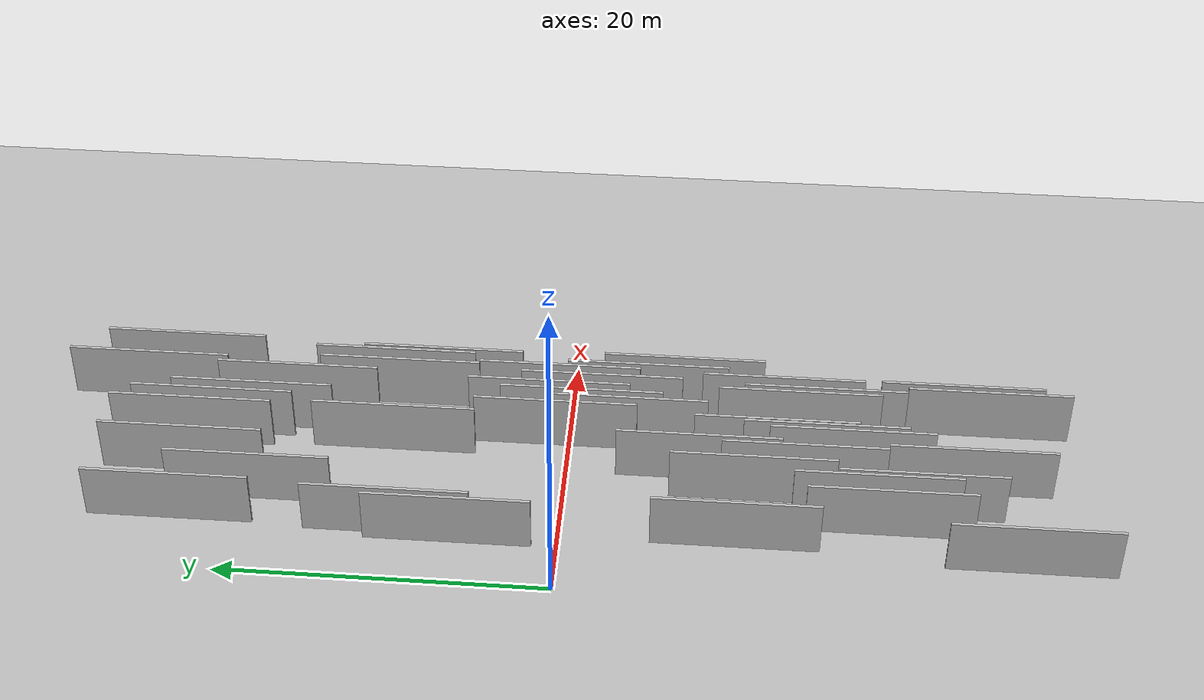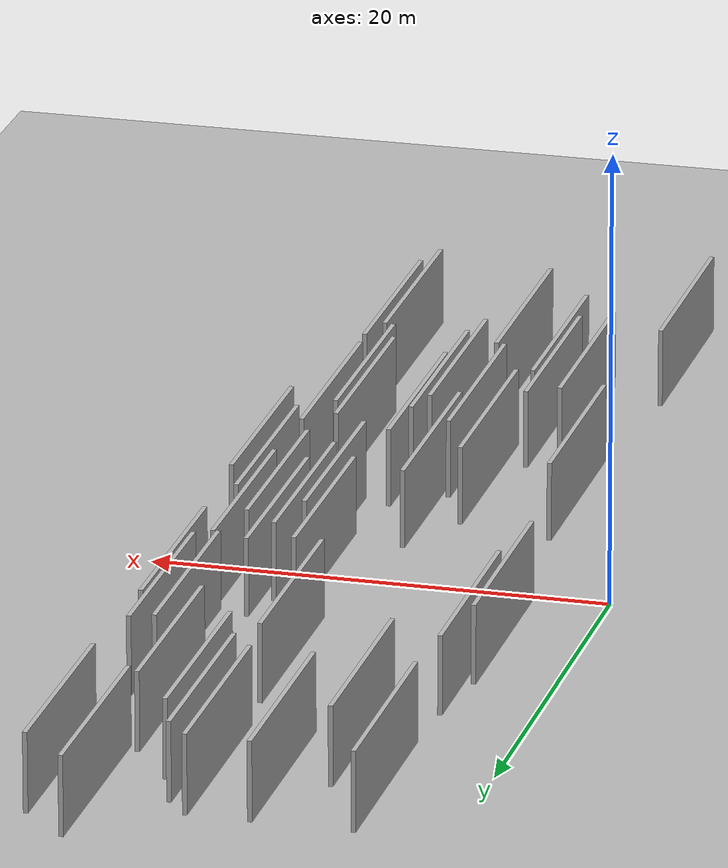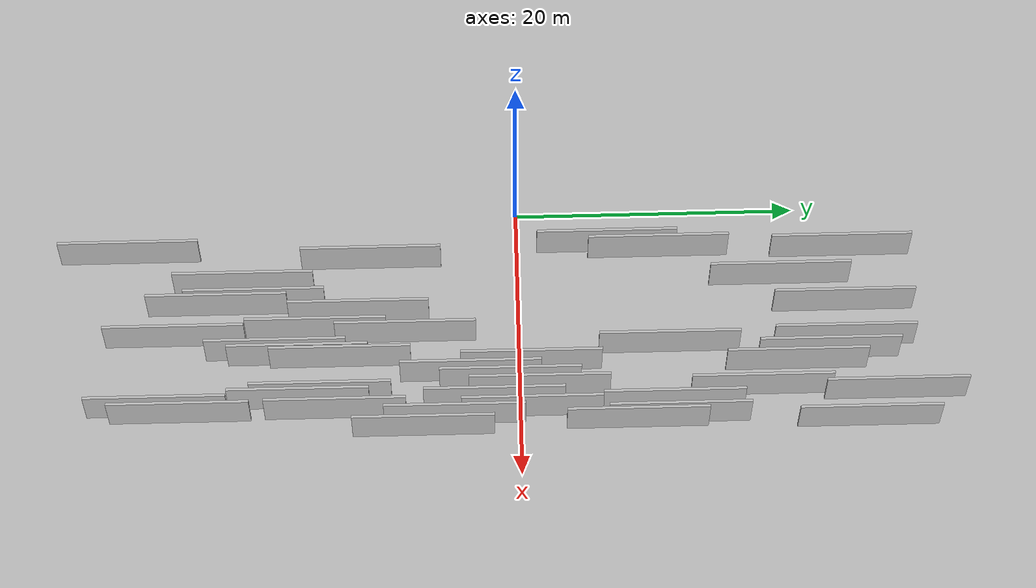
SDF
<?xml version="1.0" encoding="utf-8"?>

<sdf version="1.6">

   <world name="default">

      <gui fullscreen="0">

         <camera name="user_camera">

            <pose>-15 0 4.57585 0 0 0</pose>

            <view_controller>orbit</view_controller>

         </camera>

      </gui>

      <scene>

         <sky>

           <clouds>

             <speed>12</speed>

           </clouds>

         </sky>

         <ambient>0.4 0.4 0.4 1</ambient>

         <background>0.7 0.7 0.7 1</background>

         <shadows>1</shadows>

      </scene>

      <gravity>0 0 -9.8066</gravity>

      <magnetic_field>6e-06 2.3e-05 -4.2e-05</magnetic_field>

      <physics default="0" name="default_physics" type="ode">

         <ode>

            <solver>

               <type>quick</type>

               <iters>10</iters>

               <sor>1.0</sor>

               <use_dynamic_moi_rescaling>0</use_dynamic_moi_rescaling>

            </solver>

            <constraints>

               <cfm>0</cfm>

               <erp>0.2</erp>

               <contact_max_correcting_vel>100</contact_max_correcting_vel>

               <contact_surface_layer>0.001</contact_surface_layer>

            </constraints>

         </ode>

         <max_step_size>0.004</max_step_size>

         <real_time_factor>1</real_time_factor>

         <real_time_update_rate>250</real_time_update_rate>

      </physics>

      <light name="sun" type="directional">

         <cast_shadows>1</cast_shadows>

         <pose>0 0 10 0 0 0</pose>

         <diffuse>0.8 0.8 0.8 1</diffuse>

         <specular>0.2 0.2 0.2 1</specular>

         <attenuation>

            <range>1000</range>

            <constant>0.9</constant>

            <linear>0.01</linear>

            <quadratic>0.001</quadratic>

         </attenuation>

         <direction>-0.5 0.1 -0.9</direction>

      </light>

      <include>

         <name>ground_plane_1</name>

         <uri>model://HANNAS_ground_plane</uri>

         <pose>0 0 0  0 0 0</pose>

      </include>

      <include>

         <name>ground_plane_2</name>

         <uri>model://HANNAS_ground_plane</uri>

         <pose>100 0 0  0 0 0</pose>

      </include>

      <model name="HANNAS_wall_1">

         <static>1</static>

         <pose frame="">5.8728 18.7389 0.0 0.000000 0.000000 1.570796</pose>

         <link name="link">

            <pose frame="">0 0 2.00 0 0 0</pose>

            <collision name="collision">

               <geometry>

                  <box>

                     <size>10.00 0.2 4.00</size>

                  </box>

               </geometry>

               <max_contacts>10</max_contacts>

               <surface>

                  <contact>

                     <ode/>

                  </contact>

                  <bounce/>

                  <friction>

                     <torsional>

                        <ode/>

                     </torsional>

                     <ode/>

                  </friction>

               </surface>

            </collision>

            <visual name="visual">

               <cast_shadows>0</cast_shadows>

               <geometry>

                  <box>

                     <size>10.00 0.2 4.00</size>

                  </box>

               </geometry>

               <material>

                  <script>

                     <uri>model://HANNAS_wall/materials/scripts</uri>

                     <uri>model://HANNAS_wall/materials/textures</uri>

                     <name>vrc/HANNAS_wall</name>

                  </script>

               </material>

            </visual>

            <self_collide>0</self_collide>

            <enable_wind>0</enable_wind>

            <kinematic>0</kinematic>

         </link>

      </model>

      <model name="HANNAS_wall_2">

         <static>1</static>

         <pose frame="">15.1165 -25.6748 0.0 0.000000 0.000000 1.570796</pose>

         <link name="link">

            <pose frame="">0 0 2.00 0 0 0</pose>

            <collision name="collision">

               <geometry>

                  <box>

                     <size>10.00 0.2 4.00</size>

                  </box>

               </geometry>

               <max_contacts>10</max_contacts>

               <surface>

                  <contact>

                     <ode/>

                  </contact>

                  <bounce/>

                  <friction>

                     <torsional>

                        <ode/>

                     </torsional>

                     <ode/>

                  </friction>

               </surface>

            </collision>

            <visual name="visual">

               <cast_shadows>0</cast_shadows>

               <geometry>

                  <box>

                     <size>10.00 0.2 4.00</size>

                  </box>

               </geometry>

               <material>

                  <script>

                     <uri>model://HANNAS_wall/materials/scripts</uri>

                     <uri>model://HANNAS_wall/materials/textures</uri>

                     <name>vrc/HANNAS_wall</name>

                  </script>

               </material>

            </visual>

            <self_collide>0</self_collide>

            <enable_wind>0</enable_wind>

            <kinematic>0</kinematic>

         </link>

      </model>

      <model name="HANNAS_wall_3">

         <static>1</static>

         <pose frame="">11.5987 -12.6963 0.0 0.000000 0.000000 1.570796</pose>

         <link name="link">

            <pose frame="">0 0 2.00 0 0 0</pose>

            <collision name="collision">

               <geometry>

                  <box>

                     <size>10.00 0.2 4.00</size>

                  </box>

               </geometry>

               <max_contacts>10</max_contacts>

               <surface>

                  <contact>

                     <ode/>

                  </contact>

                  <bounce/>

                  <friction>

                     <torsional>

                        <ode/>

                     </torsional>

                     <ode/>

                  </friction>

               </surface>

            </collision>

            <visual name="visual">

               <cast_shadows>0</cast_shadows>

               <geometry>

                  <box>

                     <size>10.00 0.2 4.00</size>

                  </box>

               </geometry>

               <material>

                  <script>

                     <uri>model://HANNAS_wall/materials/scripts</uri>

                     <uri>model://HANNAS_wall/materials/textures</uri>

                     <name>vrc/HANNAS_wall</name>

                  </script>

               </material>

            </visual>

            <self_collide>0</self_collide>

            <enable_wind>0</enable_wind>

            <kinematic>0</kinematic>

         </link>

      </model>

      <model name="HANNAS_wall_4">

         <static>1</static>

         <pose frame="">13.4539 -0.6792 0.0 0.000000 0.000000 1.570796</pose>

         <link name="link">

            <pose frame="">0 0 2.00 0 0 0</pose>

            <collision name="collision">

               <geometry>

                  <box>

                     <size>10.00 0.2 4.00</size>

                  </box>

               </geometry>

               <max_contacts>10</max_contacts>

               <surface>

                  <contact>

                     <ode/>

                  </contact>

                  <bounce/>

                  <friction>

                     <torsional>

                        <ode/>

                     </torsional>

                     <ode/>

                  </friction>

               </surface>

            </collision>

            <visual name="visual">

               <cast_shadows>0</cast_shadows>

               <geometry>

                  <box>

                     <size>10.00 0.2 4.00</size>

                  </box>

               </geometry>

               <material>

                  <script>

                     <uri>model://HANNAS_wall/materials/scripts</uri>

                     <uri>model://HANNAS_wall/materials/textures</uri>

                     <name>vrc/HANNAS_wall</name>

                  </script>

               </material>

            </visual>

            <self_collide>0</self_collide>

            <enable_wind>0</enable_wind>

            <kinematic>0</kinematic>

         </link>

      </model>

      <model name="HANNAS_wall_5">

         <static>1</static>

         <pose frame="">14.0933 1.3699 0.0 0.000000 0.000000 1.570796</pose>

         <link name="link">

            <pose frame="">0 0 2.00 0 0 0</pose>

            <collision name="collision">

               <geometry>

                  <box>

                     <size>10.00 0.2 4.00</size>

                  </box>

               </geometry>

               <max_contacts>10</max_contacts>

               <surface>

                  <contact>

                     <ode/>

                  </contact>

                  <bounce/>

                  <friction>

                     <torsional>

                        <ode/>

                     </torsional>

                     <ode/>

                  </friction>

               </surface>

            </collision>

            <visual name="visual">

               <cast_shadows>0</cast_shadows>

               <geometry>

                  <box>

                     <size>10.00 0.2 4.00</size>

                  </box>

               </geometry>

               <material>

                  <script>

                     <uri>model://HANNAS_wall/materials/scripts</uri>

                     <uri>model://HANNAS_wall/materials/textures</uri>

                     <name>vrc/HANNAS_wall</name>

                  </script>

               </material>

            </visual>

            <self_collide>0</self_collide>

            <enable_wind>0</enable_wind>

            <kinematic>0</kinematic>

         </link>

      </model>

      <model name="HANNAS_wall_6">

         <static>1</static>

         <pose frame="">11.3652 -15.6783 0.0 0.000000 0.000000 1.570796</pose>

         <link name="link">

            <pose frame="">0 0 2.00 0 0 0</pose>

            <collision name="collision">

               <geometry>

                  <box>

                     <size>10.00 0.2 4.00</size>

                  </box>

               </geometry>

               <max_contacts>10</max_contacts>

               <surface>

                  <contact>

                     <ode/>

                  </contact>

                  <bounce/>

                  <friction>

                     <torsional>

                        <ode/>

                     </torsional>

                     <ode/>

                  </friction>

               </surface>

            </collision>

            <visual name="visual">

               <cast_shadows>0</cast_shadows>

               <geometry>

                  <box>

                     <size>10.00 0.2 4.00</size>

                  </box>

               </geometry>

               <material>

                  <script>

                     <uri>model://HANNAS_wall/materials/scripts</uri>

                     <uri>model://HANNAS_wall/materials/textures</uri>

                     <name>vrc/HANNAS_wall</name>

                  </script>

               </material>

            </visual>

            <self_collide>0</self_collide>

            <enable_wind>0</enable_wind>

            <kinematic>0</kinematic>

         </link>

      </model>

      <model name="HANNAS_wall_7">

         <static>1</static>

         <pose frame="">8.0963 -11.3544 0.0 0.000000 0.000000 1.570796</pose>

         <link name="link">

            <pose frame="">0 0 2.00 0 0 0</pose>

            <collision name="collision">

               <geometry>

                  <box>

                     <size>10.00 0.2 4.00</size>

                  </box>

               </geometry>

               <max_contacts>10</max_contacts>

               <surface>

                  <contact>

                     <ode/>

                  </contact>

                  <bounce/>

                  <friction>

                     <torsional>

                        <ode/>

                     </torsional>

                     <ode/>

                  </friction>

               </surface>

            </collision>

            <visual name="visual">

               <cast_shadows>0</cast_shadows>

               <geometry>

                  <box>

                     <size>10.00 0.2 4.00</size>

                  </box>

               </geometry>

               <material>

                  <script>

                     <uri>model://HANNAS_wall/materials/scripts</uri>

                     <uri>model://HANNAS_wall/materials/textures</uri>

                     <name>vrc/HANNAS_wall</name>

                  </script>

               </material>

            </visual>

            <self_collide>0</self_collide>

            <enable_wind>0</enable_wind>

            <kinematic>0</kinematic>

         </link>

      </model>

      <model name="HANNAS_wall_8">

         <static>1</static>

         <pose frame="">14.9226 26.5266 0.0 0.000000 0.000000 1.570796</pose>

         <link name="link">

            <pose frame="">0 0 2.00 0 0 0</pose>

            <collision name="collision">

               <geometry>

                  <box>

                     <size>10.00 0.2 4.00</size>

                  </box>

               </geometry>

               <max_contacts>10</max_contacts>

               <surface>

                  <contact>

                     <ode/>

                  </contact>

                  <bounce/>

                  <friction>

                     <torsional>

                        <ode/>

                     </torsional>

                     <ode/>

                  </friction>

               </surface>

            </collision>

            <visual name="visual">

               <cast_shadows>0</cast_shadows>

               <geometry>

                  <box>

                     <size>10.00 0.2 4.00</size>

                  </box>

               </geometry>

               <material>

                  <script>

                     <uri>model://HANNAS_wall/materials/scripts</uri>

                     <uri>model://HANNAS_wall/materials/textures</uri>

                     <name>vrc/HANNAS_wall</name>

                  </script>

               </material>

            </visual>

            <self_collide>0</self_collide>

            <enable_wind>0</enable_wind>

            <kinematic>0</kinematic>

         </link>

      </model>

      <model name="HANNAS_wall_9">

         <static>1</static>

         <pose frame="">11.7307 21.9676 0.0 0.000000 0.000000 1.570796</pose>

         <link name="link">

            <pose frame="">0 0 2.00 0 0 0</pose>

            <collision name="collision">

               <geometry>

                  <box>

                     <size>10.00 0.2 4.00</size>

                  </box>

               </geometry>

               <max_contacts>10</max_contacts>

               <surface>

                  <contact>

                     <ode/>

                  </contact>

                  <bounce/>

                  <friction>

                     <torsional>

                        <ode/>

                     </torsional>

                     <ode/>

                  </friction>

               </surface>

            </collision>

            <visual name="visual">

               <cast_shadows>0</cast_shadows>

               <geometry>

                  <box>

                     <size>10.00 0.2 4.00</size>

                  </box>

               </geometry>

               <material>

                  <script>

                     <uri>model://HANNAS_wall/materials/scripts</uri>

                     <uri>model://HANNAS_wall/materials/textures</uri>

                     <name>vrc/HANNAS_wall</name>

                  </script>

               </material>

            </visual>

            <self_collide>0</self_collide>

            <enable_wind>0</enable_wind>

            <kinematic>0</kinematic>

         </link>

      </model>

      <model name="HANNAS_wall_10">

         <static>1</static>

         <pose frame="">16.7326 8.2308 0.0 0.000000 0.000000 1.570796</pose>

         <link name="link">

            <pose frame="">0 0 2.00 0 0 0</pose>

            <collision name="collision">

               <geometry>

                  <box>

                     <size>10.00 0.2 4.00</size>

                  </box>

               </geometry>

               <max_contacts>10</max_contacts>

               <surface>

                  <contact>

                     <ode/>

                  </contact>

                  <bounce/>

                  <friction>

                     <torsional>

                        <ode/>

                     </torsional>

                     <ode/>

                  </friction>

               </surface>

            </collision>

            <visual name="visual">

               <cast_shadows>0</cast_shadows>

               <geometry>

                  <box>

                     <size>10.00 0.2 4.00</size>

                  </box>

               </geometry>

               <material>

                  <script>

                     <uri>model://HANNAS_wall/materials/scripts</uri>

                     <uri>model://HANNAS_wall/materials/textures</uri>

                     <name>vrc/HANNAS_wall</name>

                  </script>

               </material>

            </visual>

            <self_collide>0</self_collide>

            <enable_wind>0</enable_wind>

            <kinematic>0</kinematic>

         </link>

      </model>

      <model name="HANNAS_wall_11">

         <static>1</static>

         <pose frame="">9.7531 -24.4220 0.0 0.000000 0.000000 1.570796</pose>

         <link name="link">

            <pose frame="">0 0 2.00 0 0 0</pose>

            <collision name="collision">

               <geometry>

                  <box>

                     <size>10.00 0.2 4.00</size>

                  </box>

               </geometry>

               <max_contacts>10</max_contacts>

               <surface>

                  <contact>

                     <ode/>

                  </contact>

                  <bounce/>

                  <friction>

                     <torsional>

                        <ode/>

                     </torsional>

                     <ode/>

                  </friction>

               </surface>

            </collision>

            <visual name="visual">

               <cast_shadows>0</cast_shadows>

               <geometry>

                  <box>

                     <size>10.00 0.2 4.00</size>

                  </box>

               </geometry>

               <material>

                  <script>

                     <uri>model://HANNAS_wall/materials/scripts</uri>

                     <uri>model://HANNAS_wall/materials/textures</uri>

                     <name>vrc/HANNAS_wall</name>

                  </script>

               </material>

            </visual>

            <self_collide>0</self_collide>

            <enable_wind>0</enable_wind>

            <kinematic>0</kinematic>

         </link>

      </model>

      <model name="HANNAS_wall_12">

         <static>1</static>

         <pose frame="">9.7805 -8.0436 0.0 0.000000 0.000000 1.570796</pose>

         <link name="link">

            <pose frame="">0 0 2.00 0 0 0</pose>

            <collision name="collision">

               <geometry>

                  <box>

                     <size>10.00 0.2 4.00</size>

                  </box>

               </geometry>

               <max_contacts>10</max_contacts>

               <surface>

                  <contact>

                     <ode/>

                  </contact>

                  <bounce/>

                  <friction>

                     <torsional>

                        <ode/>

                     </torsional>

                     <ode/>

                  </friction>

               </surface>

            </collision>

            <visual name="visual">

               <cast_shadows>0</cast_shadows>

               <geometry>

                  <box>

                     <size>10.00 0.2 4.00</size>

                  </box>

               </geometry>

               <material>

                  <script>

                     <uri>model://HANNAS_wall/materials/scripts</uri>

                     <uri>model://HANNAS_wall/materials/textures</uri>

                     <name>vrc/HANNAS_wall</name>

                  </script>

               </material>

            </visual>

            <self_collide>0</self_collide>

            <enable_wind>0</enable_wind>

            <kinematic>0</kinematic>

         </link>

      </model>

      <model name="HANNAS_wall_13">

         <static>1</static>

         <pose frame="">3.7612 23.1883 0.0 0.000000 0.000000 1.570796</pose>

         <link name="link">

            <pose frame="">0 0 2.00 0 0 0</pose>

            <collision name="collision">

               <geometry>

                  <box>

                     <size>10.00 0.2 4.00</size>

                  </box>

               </geometry>

               <max_contacts>10</max_contacts>

               <surface>

                  <contact>

                     <ode/>

                  </contact>

                  <bounce/>

                  <friction>

                     <torsional>

                        <ode/>

                     </torsional>

                     <ode/>

                  </friction>

               </surface>

            </collision>

            <visual name="visual">

               <cast_shadows>0</cast_shadows>

               <geometry>

                  <box>

                     <size>10.00 0.2 4.00</size>

                  </box>

               </geometry>

               <material>

                  <script>

                     <uri>model://HANNAS_wall/materials/scripts</uri>

                     <uri>model://HANNAS_wall/materials/textures</uri>

                     <name>vrc/HANNAS_wall</name>

                  </script>

               </material>

            </visual>

            <self_collide>0</self_collide>

            <enable_wind>0</enable_wind>

            <kinematic>0</kinematic>

         </link>

      </model>

      <model name="HANNAS_wall_14">

         <static>1</static>

         <pose frame="">12.8696 -3.4673 0.0 0.000000 0.000000 1.570796</pose>

         <link name="link">

            <pose frame="">0 0 2.00 0 0 0</pose>

            <collision name="collision">

               <geometry>

                  <box>

                     <size>10.00 0.2 4.00</size>

                  </box>

               </geometry>

               <max_contacts>10</max_contacts>

               <surface>

                  <contact>

                     <ode/>

                  </contact>

                  <bounce/>

                  <friction>

                     <torsional>

                        <ode/>

                     </torsional>

                     <ode/>

                  </friction>

               </surface>

            </collision>

            <visual name="visual">

               <cast_shadows>0</cast_shadows>

               <geometry>

                  <box>

                     <size>10.00 0.2 4.00</size>

                  </box>

               </geometry>

               <material>

                  <script>

                     <uri>model://HANNAS_wall/materials/scripts</uri>

                     <uri>model://HANNAS_wall/materials/textures</uri>

                     <name>vrc/HANNAS_wall</name>

                  </script>

               </material>

            </visual>

            <self_collide>0</self_collide>

            <enable_wind>0</enable_wind>

            <kinematic>0</kinematic>

         </link>

      </model>

      <model name="HANNAS_wall_15">

         <static>1</static>

         <pose frame="">12.1952 0.8272 0.0 0.000000 0.000000 1.570796</pose>

         <link name="link">

            <pose frame="">0 0 2.00 0 0 0</pose>

            <collision name="collision">

               <geometry>

                  <box>

                     <size>10.00 0.2 4.00</size>

                  </box>

               </geometry>

               <max_contacts>10</max_contacts>

               <surface>

                  <contact>

                     <ode/>

                  </contact>

                  <bounce/>

                  <friction>

                     <torsional>

                        <ode/>

                     </torsional>

                     <ode/>

                  </friction>

               </surface>

            </collision>

            <visual name="visual">

               <cast_shadows>0</cast_shadows>

               <geometry>

                  <box>

                     <size>10.00 0.2 4.00</size>

                  </box>

               </geometry>

               <material>

                  <script>

                     <uri>model://HANNAS_wall/materials/scripts</uri>

                     <uri>model://HANNAS_wall/materials/textures</uri>

                     <name>vrc/HANNAS_wall</name>

                  </script>

               </material>

            </visual>

            <self_collide>0</self_collide>

            <enable_wind>0</enable_wind>

            <kinematic>0</kinematic>

         </link>

      </model>

      <model name="HANNAS_wall_16">

         <static>1</static>

         <pose frame="">5.7257 -19.5412 0.0 0.000000 0.000000 1.570796</pose>

         <link name="link">

            <pose frame="">0 0 2.00 0 0 0</pose>

            <collision name="collision">

               <geometry>

                  <box>

                     <size>10.00 0.2 4.00</size>

                  </box>

               </geometry>

               <max_contacts>10</max_contacts>

               <surface>

                  <contact>

                     <ode/>

                  </contact>

                  <bounce/>

                  <friction>

                     <torsional>

                        <ode/>

                     </torsional>

                     <ode/>

                  </friction>

               </surface>

            </collision>

            <visual name="visual">

               <cast_shadows>0</cast_shadows>

               <geometry>

                  <box>

                     <size>10.00 0.2 4.00</size>

                  </box>

               </geometry>

               <material>

                  <script>

                     <uri>model://HANNAS_wall/materials/scripts</uri>

                     <uri>model://HANNAS_wall/materials/textures</uri>

                     <name>vrc/HANNAS_wall</name>

                  </script>

               </material>

            </visual>

            <self_collide>0</self_collide>

            <enable_wind>0</enable_wind>

            <kinematic>0</kinematic>

         </link>

      </model>

      <model name="HANNAS_wall_17">

         <static>1</static>

         <pose frame="">15.6199 -24.0431 0.0 0.000000 0.000000 1.570796</pose>

         <link name="link">

            <pose frame="">0 0 2.00 0 0 0</pose>

            <collision name="collision">

               <geometry>

                  <box>

                     <size>10.00 0.2 4.00</size>

                  </box>

               </geometry>

               <max_contacts>10</max_contacts>

               <surface>

                  <contact>

                     <ode/>

                  </contact>

                  <bounce/>

                  <friction>

                     <torsional>

                        <ode/>

                     </torsional>

                     <ode/>

                  </friction>

               </surface>

            </collision>

            <visual name="visual">

               <cast_shadows>0</cast_shadows>

               <geometry>

                  <box>

                     <size>10.00 0.2 4.00</size>

                  </box>

               </geometry>

               <material>

                  <script>

                     <uri>model://HANNAS_wall/materials/scripts</uri>

                     <uri>model://HANNAS_wall/materials/textures</uri>

                     <name>vrc/HANNAS_wall</name>

                  </script>

               </material>

            </visual>

            <self_collide>0</self_collide>

            <enable_wind>0</enable_wind>

            <kinematic>0</kinematic>

         </link>

      </model>

      <model name="HANNAS_wall_18">

         <static>1</static>

         <pose frame="">16.4174 11.1938 0.0 0.000000 0.000000 1.570796</pose>

         <link name="link">

            <pose frame="">0 0 2.00 0 0 0</pose>

            <collision name="collision">

               <geometry>

                  <box>

                     <size>10.00 0.2 4.00</size>

                  </box>

               </geometry>

               <max_contacts>10</max_contacts>

               <surface>

                  <contact>

                     <ode/>

                  </contact>

                  <bounce/>

                  <friction>

                     <torsional>

                        <ode/>

                     </torsional>

                     <ode/>

                  </friction>

               </surface>

            </collision>

            <visual name="visual">

               <cast_shadows>0</cast_shadows>

               <geometry>

                  <box>

                     <size>10.00 0.2 4.00</size>

                  </box>

               </geometry>

               <material>

                  <script>

                     <uri>model://HANNAS_wall/materials/scripts</uri>

                     <uri>model://HANNAS_wall/materials/textures</uri>

                     <name>vrc/HANNAS_wall</name>

                  </script>

               </material>

            </visual>

            <self_collide>0</self_collide>

            <enable_wind>0</enable_wind>

            <kinematic>0</kinematic>

         </link>

      </model>

      <model name="HANNAS_wall_19">

         <static>1</static>

         <pose frame="">3.1681 -27.7267 0.0 0.000000 0.000000 1.570796</pose>

         <link name="link">

            <pose frame="">0 0 2.00 0 0 0</pose>

            <collision name="collision">

               <geometry>

                  <box>

                     <size>10.00 0.2 4.00</size>

                  </box>

               </geometry>

               <max_contacts>10</max_contacts>

               <surface>

                  <contact>

                     <ode/>

                  </contact>

                  <bounce/>

                  <friction>

                     <torsional>

                        <ode/>

                     </torsional>

                     <ode/>

                  </friction>

               </surface>

            </collision>

            <visual name="visual">

               <cast_shadows>0</cast_shadows>

               <geometry>

                  <box>

                     <size>10.00 0.2 4.00</size>

                  </box>

               </geometry>

               <material>

                  <script>

                     <uri>model://HANNAS_wall/materials/scripts</uri>

                     <uri>model://HANNAS_wall/materials/textures</uri>

                     <name>vrc/HANNAS_wall</name>

                  </script>

               </material>

            </visual>

            <self_collide>0</self_collide>

            <enable_wind>0</enable_wind>

            <kinematic>0</kinematic>

         </link>

      </model>

      <model name="HANNAS_wall_20">

         <static>1</static>

         <pose frame="">14.9461 -1.8319 0.0 0.000000 0.000000 1.570796</pose>

         <link name="link">

            <pose frame="">0 0 2.00 0 0 0</pose>

            <collision name="collision">

               <geometry>

                  <box>

                     <size>10.00 0.2 4.00</size>

                  </box>

               </geometry>

               <max_contacts>10</max_contacts>

               <surface>

                  <contact>

                     <ode/>

                  </contact>

                  <bounce/>

                  <friction>

                     <torsional>

                        <ode/>

                     </torsional>

                     <ode/>

                  </friction>

               </surface>

            </collision>

            <visual name="visual">

               <cast_shadows>0</cast_shadows>

               <geometry>

                  <box>

                     <size>10.00 0.2 4.00</size>

                  </box>

               </geometry>

               <material>

                  <script>

                     <uri>model://HANNAS_wall/materials/scripts</uri>

                     <uri>model://HANNAS_wall/materials/textures</uri>

                     <name>vrc/HANNAS_wall</name>

                  </script>

               </material>

            </visual>

            <self_collide>0</self_collide>

            <enable_wind>0</enable_wind>

            <kinematic>0</kinematic>

         </link>

      </model>

      <model name="HANNAS_wall_21">

         <static>1</static>

         <pose frame="">14.7141 -15.6450 0.0 0.000000 0.000000 1.570796</pose>

         <link name="link">

            <pose frame="">0 0 2.00 0 0 0</pose>

            <collision name="collision">

               <geometry>

                  <box>

                     <size>10.00 0.2 4.00</size>

                  </box>

               </geometry>

               <max_contacts>10</max_contacts>

               <surface>

                  <contact>

                     <ode/>

                  </contact>

                  <bounce/>

                  <friction>

                     <torsional>

                        <ode/>

                     </torsional>

                     <ode/>

                  </friction>

               </surface>

            </collision>

            <visual name="visual">

               <cast_shadows>0</cast_shadows>

               <geometry>

                  <box>

                     <size>10.00 0.2 4.00</size>

                  </box>

               </geometry>

               <material>

                  <script>

                     <uri>model://HANNAS_wall/materials/scripts</uri>

                     <uri>model://HANNAS_wall/materials/textures</uri>

                     <name>vrc/HANNAS_wall</name>

                  </script>

               </material>

            </visual>

            <self_collide>0</self_collide>

            <enable_wind>0</enable_wind>

            <kinematic>0</kinematic>

         </link>

      </model>

      <model name="HANNAS_wall_22">

         <static>1</static>

         <pose frame="">14.2834 -14.0796 0.0 0.000000 0.000000 1.570796</pose>

         <link name="link">

            <pose frame="">0 0 2.00 0 0 0</pose>

            <collision name="collision">

               <geometry>

                  <box>

                     <size>10.00 0.2 4.00</size>

                  </box>

               </geometry>

               <max_contacts>10</max_contacts>

               <surface>

                  <contact>

                     <ode/>

                  </contact>

                  <bounce/>

                  <friction>

                     <torsional>

                        <ode/>

                     </torsional>

                     <ode/>

                  </friction>

               </surface>

            </collision>

            <visual name="visual">

               <cast_shadows>0</cast_shadows>

               <geometry>

                  <box>

                     <size>10.00 0.2 4.00</size>

                  </box>

               </geometry>

               <material>

                  <script>

                     <uri>model://HANNAS_wall/materials/scripts</uri>

                     <uri>model://HANNAS_wall/materials/textures</uri>

                     <name>vrc/HANNAS_wall</name>

                  </script>

               </material>

            </visual>

            <self_collide>0</self_collide>

            <enable_wind>0</enable_wind>

            <kinematic>0</kinematic>

         </link>

      </model>

      <model name="HANNAS_wall_23">

         <static>1</static>

         <pose frame="">16.9758 24.5223 0.0 0.000000 0.000000 1.570796</pose>

         <link name="link">

            <pose frame="">0 0 2.00 0 0 0</pose>

            <collision name="collision">

               <geometry>

                  <box>

                     <size>10.00 0.2 4.00</size>

                  </box>

               </geometry>

               <max_contacts>10</max_contacts>

               <surface>

                  <contact>

                     <ode/>

                  </contact>

                  <bounce/>

                  <friction>

                     <torsional>

                        <ode/>

                     </torsional>

                     <ode/>

                  </friction>

               </surface>

            </collision>

            <visual name="visual">

               <cast_shadows>0</cast_shadows>

               <geometry>

                  <box>

                     <size>10.00 0.2 4.00</size>

                  </box>

               </geometry>

               <material>

                  <script>

                     <uri>model://HANNAS_wall/materials/scripts</uri>

                     <uri>model://HANNAS_wall/materials/textures</uri>

                     <name>vrc/HANNAS_wall</name>

                  </script>

               </material>

            </visual>

            <self_collide>0</self_collide>

            <enable_wind>0</enable_wind>

            <kinematic>0</kinematic>

         </link>

      </model>

      <model name="HANNAS_wall_24">

         <static>1</static>

         <pose frame="">10.7554 23.1111 0.0 0.000000 0.000000 1.570796</pose>

         <link name="link">

            <pose frame="">0 0 2.00 0 0 0</pose>

            <collision name="collision">

               <geometry>

                  <box>

                     <size>10.00 0.2 4.00</size>

                  </box>

               </geometry>

               <max_contacts>10</max_contacts>

               <surface>

                  <contact>

                     <ode/>

                  </contact>

                  <bounce/>

                  <friction>

                     <torsional>

                        <ode/>

                     </torsional>

                     <ode/>

                  </friction>

               </surface>

            </collision>

            <visual name="visual">

               <cast_shadows>0</cast_shadows>

               <geometry>

                  <box>

                     <size>10.00 0.2 4.00</size>

                  </box>

               </geometry>

               <material>

                  <script>

                     <uri>model://HANNAS_wall/materials/scripts</uri>

                     <uri>model://HANNAS_wall/materials/textures</uri>

                     <name>vrc/HANNAS_wall</name>

                  </script>

               </material>

            </visual>

            <self_collide>0</self_collide>

            <enable_wind>0</enable_wind>

            <kinematic>0</kinematic>

         </link>

      </model>

      <model name="HANNAS_wall_25">

         <static>1</static>

         <pose frame="">10.9411 -17.2613 0.0 0.000000 0.000000 1.570796</pose>

         <link name="link">

            <pose frame="">0 0 2.00 0 0 0</pose>

            <collision name="collision">

               <geometry>

                  <box>

                     <size>10.00 0.2 4.00</size>

                  </box>

               </geometry>

               <max_contacts>10</max_contacts>

               <surface>

                  <contact>

                     <ode/>

                  </contact>

                  <bounce/>

                  <friction>

                     <torsional>

                        <ode/>

                     </torsional>

                     <ode/>

                  </friction>

               </surface>

            </collision>

            <visual name="visual">

               <cast_shadows>0</cast_shadows>

               <geometry>

                  <box>

                     <size>10.00 0.2 4.00</size>

                  </box>

               </geometry>

               <material>

                  <script>

                     <uri>model://HANNAS_wall/materials/scripts</uri>

                     <uri>model://HANNAS_wall/materials/textures</uri>

                     <name>vrc/HANNAS_wall</name>

                  </script>

               </material>

            </visual>

            <self_collide>0</self_collide>

            <enable_wind>0</enable_wind>

            <kinematic>0</kinematic>

         </link>

      </model>

      <model name="HANNAS_wall_26">

         <static>1</static>

         <pose frame="">15.6875 0.8320 0.0 0.000000 0.000000 1.570796</pose>

         <link name="link">

            <pose frame="">0 0 2.00 0 0 0</pose>

            <collision name="collision">

               <geometry>

                  <box>

                     <size>10.00 0.2 4.00</size>

                  </box>

               </geometry>

               <max_contacts>10</max_contacts>

               <surface>

                  <contact>

                     <ode/>

                  </contact>

                  <bounce/>

                  <friction>

                     <torsional>

                        <ode/>

                     </torsional>

                     <ode/>

                  </friction>

               </surface>

            </collision>

            <visual name="visual">

               <cast_shadows>0</cast_shadows>

               <geometry>

                  <box>

                     <size>10.00 0.2 4.00</size>

                  </box>

               </geometry>

               <material>

                  <script>

                     <uri>model://HANNAS_wall/materials/scripts</uri>

                     <uri>model://HANNAS_wall/materials/textures</uri>

                     <name>vrc/HANNAS_wall</name>

                  </script>

               </material>

            </visual>

            <self_collide>0</self_collide>

            <enable_wind>0</enable_wind>

            <kinematic>0</kinematic>

         </link>

      </model>

      <model name="HANNAS_wall_27">

         <static>1</static>

         <pose frame="">16.9857 -6.8696 0.0 0.000000 0.000000 1.570796</pose>

         <link name="link">

            <pose frame="">0 0 2.00 0 0 0</pose>

            <collision name="collision">

               <geometry>

                  <box>

                     <size>10.00 0.2 4.00</size>

                  </box>

               </geometry>

               <max_contacts>10</max_contacts>

               <surface>

                  <contact>

                     <ode/>

                  </contact>

                  <bounce/>

                  <friction>

                     <torsional>

                        <ode/>

                     </torsional>

                     <ode/>

                  </friction>

               </surface>

            </collision>

            <visual name="visual">

               <cast_shadows>0</cast_shadows>

               <geometry>

                  <box>

                     <size>10.00 0.2 4.00</size>

                  </box>

               </geometry>

               <material>

                  <script>

                     <uri>model://HANNAS_wall/materials/scripts</uri>

                     <uri>model://HANNAS_wall/materials/textures</uri>

                     <name>vrc/HANNAS_wall</name>

                  </script>

               </material>

            </visual>

            <self_collide>0</self_collide>

            <enable_wind>0</enable_wind>

            <kinematic>0</kinematic>

         </link>

      </model>

      <model name="HANNAS_wall_28">

         <static>1</static>

         <pose frame="">7.3881 -21.4155 0.0 0.000000 0.000000 1.570796</pose>

         <link name="link">

            <pose frame="">0 0 2.00 0 0 0</pose>

            <collision name="collision">

               <geometry>

                  <box>

                     <size>10.00 0.2 4.00</size>

                  </box>

               </geometry>

               <max_contacts>10</max_contacts>

               <surface>

                  <contact>

                     <ode/>

                  </contact>

                  <bounce/>

                  <friction>

                     <torsional>

                        <ode/>

                     </torsional>

                     <ode/>

                  </friction>

               </surface>

            </collision>

            <visual name="visual">

               <cast_shadows>0</cast_shadows>

               <geometry>

                  <box>

                     <size>10.00 0.2 4.00</size>

                  </box>

               </geometry>

               <material>

                  <script>

                     <uri>model://HANNAS_wall/materials/scripts</uri>

                     <uri>model://HANNAS_wall/materials/textures</uri>

                     <name>vrc/HANNAS_wall</name>

                  </script>

               </material>

            </visual>

            <self_collide>0</self_collide>

            <enable_wind>0</enable_wind>

            <kinematic>0</kinematic>

         </link>

      </model>

      <model name="HANNAS_wall_29">

         <static>1</static>

         <pose frame="">15.4405 10.8149 0.0 0.000000 0.000000 1.570796</pose>

         <link name="link">

            <pose frame="">0 0 2.00 0 0 0</pose>

            <collision name="collision">

               <geometry>

                  <box>

                     <size>10.00 0.2 4.00</size>

                  </box>

               </geometry>

               <max_contacts>10</max_contacts>

               <surface>

                  <contact>

                     <ode/>

                  </contact>

                  <bounce/>

                  <friction>

                     <torsional>

                        <ode/>

                     </torsional>

                     <ode/>

                  </friction>

               </surface>

            </collision>

            <visual name="visual">

               <cast_shadows>0</cast_shadows>

               <geometry>

                  <box>

                     <size>10.00 0.2 4.00</size>

                  </box>

               </geometry>

               <material>

                  <script>

                     <uri>model://HANNAS_wall/materials/scripts</uri>

                     <uri>model://HANNAS_wall/materials/textures</uri>

                     <name>vrc/HANNAS_wall</name>

                  </script>

               </material>

            </visual>

            <self_collide>0</self_collide>

            <enable_wind>0</enable_wind>

            <kinematic>0</kinematic>

         </link>

      </model>

      <model name="HANNAS_wall_30">

         <static>1</static>

         <pose frame="">16.1586 -4.6386 0.0 0.000000 0.000000 1.570796</pose>

         <link name="link">

            <pose frame="">0 0 2.00 0 0 0</pose>

            <collision name="collision">

               <geometry>

                  <box>

                     <size>10.00 0.2 4.00</size>

                  </box>

               </geometry>

               <max_contacts>10</max_contacts>

               <surface>

                  <contact>

                     <ode/>

                  </contact>

                  <bounce/>

                  <friction>

                     <torsional>

                        <ode/>

                     </torsional>

                     <ode/>

                  </friction>

               </surface>

            </collision>

            <visual name="visual">

               <cast_shadows>0</cast_shadows>

               <geometry>

                  <box>

                     <size>10.00 0.2 4.00</size>

                  </box>

               </geometry>

               <material>

                  <script>

                     <uri>model://HANNAS_wall/materials/scripts</uri>

                     <uri>model://HANNAS_wall/materials/textures</uri>

                     <name>vrc/HANNAS_wall</name>

                  </script>

               </material>

            </visual>

            <self_collide>0</self_collide>

            <enable_wind>0</enable_wind>

            <kinematic>0</kinematic>

         </link>

      </model>

      <model name="HANNAS_wall_31">

         <static>1</static>

         <pose frame="">14.4208 17.0712 0.0 0.000000 0.000000 1.570796</pose>

         <link name="link">

            <pose frame="">0 0 2.00 0 0 0</pose>

            <collision name="collision">

               <geometry>

                  <box>

                     <size>10.00 0.2 4.00</size>

                  </box>

               </geometry>

               <max_contacts>10</max_contacts>

               <surface>

                  <contact>

                     <ode/>

                  </contact>

                  <bounce/>

                  <friction>

                     <torsional>

                        <ode/>

                     </torsional>

                     <ode/>

                  </friction>

               </surface>

            </collision>

            <visual name="visual">

               <cast_shadows>0</cast_shadows>

               <geometry>

                  <box>

                     <size>10.00 0.2 4.00</size>

                  </box>

               </geometry>

               <material>

                  <script>

                     <uri>model://HANNAS_wall/materials/scripts</uri>

                     <uri>model://HANNAS_wall/materials/textures</uri>

                     <name>vrc/HANNAS_wall</name>

                  </script>

               </material>

            </visual>

            <self_collide>0</self_collide>

            <enable_wind>0</enable_wind>

            <kinematic>0</kinematic>

         </link>

      </model>

      <model name="HANNAS_wall_32">

         <static>1</static>

         <pose frame="">8.0457 23.1736 0.0 0.000000 0.000000 1.570796</pose>

         <link name="link">

            <pose frame="">0 0 2.00 0 0 0</pose>

            <collision name="collision">

               <geometry>

                  <box>

                     <size>10.00 0.2 4.00</size>

                  </box>

               </geometry>

               <max_contacts>10</max_contacts>

               <surface>

                  <contact>

                     <ode/>

                  </contact>

                  <bounce/>

                  <friction>

                     <torsional>

                        <ode/>

                     </torsional>

                     <ode/>

                  </friction>

               </surface>

            </collision>

            <visual name="visual">

               <cast_shadows>0</cast_shadows>

               <geometry>

                  <box>

                     <size>10.00 0.2 4.00</size>

                  </box>

               </geometry>

               <material>

                  <script>

                     <uri>model://HANNAS_wall/materials/scripts</uri>

                     <uri>model://HANNAS_wall/materials/textures</uri>

                     <name>vrc/HANNAS_wall</name>

                  </script>

               </material>

            </visual>

            <self_collide>0</self_collide>

            <enable_wind>0</enable_wind>

            <kinematic>0</kinematic>

         </link>

      </model>

      <model name="HANNAS_wall_33">

         <static>1</static>

         <pose frame="">7.0364 -18.7599 0.0 0.000000 0.000000 1.570796</pose>

         <link name="link">

            <pose frame="">0 0 2.00 0 0 0</pose>

            <collision name="collision">

               <geometry>

                  <box>

                     <size>10.00 0.2 4.00</size>

                  </box>

               </geometry>

               <max_contacts>10</max_contacts>

               <surface>

                  <contact>

                     <ode/>

                  </contact>

                  <bounce/>

                  <friction>

                     <torsional>

                        <ode/>

                     </torsional>

                     <ode/>

                  </friction>

               </surface>

            </collision>

            <visual name="visual">

               <cast_shadows>0</cast_shadows>

               <geometry>

                  <box>

                     <size>10.00 0.2 4.00</size>

                  </box>

               </geometry>

               <material>

                  <script>

                     <uri>model://HANNAS_wall/materials/scripts</uri>

                     <uri>model://HANNAS_wall/materials/textures</uri>

                     <name>vrc/HANNAS_wall</name>

                  </script>

               </material>

            </visual>

            <self_collide>0</self_collide>

            <enable_wind>0</enable_wind>

            <kinematic>0</kinematic>

         </link>

      </model>

      <model name="HANNAS_wall_34">

         <static>1</static>

         <pose frame="">9.3821 -14.4022 0.0 0.000000 0.000000 1.570796</pose>

         <link name="link">

            <pose frame="">0 0 2.00 0 0 0</pose>

            <collision name="collision">

               <geometry>

                  <box>

                     <size>10.00 0.2 4.00</size>

                  </box>

               </geometry>

               <max_contacts>10</max_contacts>

               <surface>

                  <contact>

                     <ode/>

                  </contact>

                  <bounce/>

                  <friction>

                     <torsional>

                        <ode/>

                     </torsional>

                     <ode/>

                  </friction>

               </surface>

            </collision>

            <visual name="visual">

               <cast_shadows>0</cast_shadows>

               <geometry>

                  <box>

                     <size>10.00 0.2 4.00</size>

                  </box>

               </geometry>

               <material>

                  <script>

                     <uri>model://HANNAS_wall/materials/scripts</uri>

                     <uri>model://HANNAS_wall/materials/textures</uri>

                     <name>vrc/HANNAS_wall</name>

                  </script>

               </material>

            </visual>

            <self_collide>0</self_collide>

            <enable_wind>0</enable_wind>

            <kinematic>0</kinematic>

         </link>

      </model>

      <model name="HANNAS_wall_35">

         <static>1</static>

         <pose frame="">3.0269 6.4592 0.0 0.000000 0.000000 1.570796</pose>

         <link name="link">

            <pose frame="">0 0 2.00 0 0 0</pose>

            <collision name="collision">

               <geometry>

                  <box>

                     <size>10.00 0.2 4.00</size>

                  </box>

               </geometry>

               <max_contacts>10</max_contacts>

               <surface>

                  <contact>

                     <ode/>

                  </contact>

                  <bounce/>

                  <friction>

                     <torsional>

                        <ode/>

                     </torsional>

                     <ode/>

                  </friction>

               </surface>

            </collision>

            <visual name="visual">

               <cast_shadows>0</cast_shadows>

               <geometry>

                  <box>

                     <size>10.00 0.2 4.00</size>

                  </box>

               </geometry>

               <material>

                  <script>

                     <uri>model://HANNAS_wall/materials/scripts</uri>

                     <uri>model://HANNAS_wall/materials/textures</uri>

                     <name>vrc/HANNAS_wall</name>

                  </script>

               </material>

            </visual>

            <self_collide>0</self_collide>

            <enable_wind>0</enable_wind>

            <kinematic>0</kinematic>

         </link>

      </model>

      <model name="HANNAS_wall_36">

         <static>1</static>

         <pose frame="">12.5267 19.6364 0.0 0.000000 0.000000 1.570796</pose>

         <link name="link">

            <pose frame="">0 0 2.00 0 0 0</pose>

            <collision name="collision">

               <geometry>

                  <box>

                     <size>10.00 0.2 4.00</size>

                  </box>

               </geometry>

               <max_contacts>10</max_contacts>

               <surface>

                  <contact>

                     <ode/>

                  </contact>

                  <bounce/>

                  <friction>

                     <torsional>

                        <ode/>

                     </torsional>

                     <ode/>

                  </friction>

               </surface>

            </collision>

            <visual name="visual">

               <cast_shadows>0</cast_shadows>

               <geometry>

                  <box>

                     <size>10.00 0.2 4.00</size>

                  </box>

               </geometry>

               <material>

                  <script>

                     <uri>model://HANNAS_wall/materials/scripts</uri>

                     <uri>model://HANNAS_wall/materials/textures</uri>

                     <name>vrc/HANNAS_wall</name>

                  </script>

               </material>

            </visual>

            <self_collide>0</self_collide>

            <enable_wind>0</enable_wind>

            <kinematic>0</kinematic>

         </link>

      </model>

      <model name="HANNAS_wall_37">

         <static>1</static>

         <pose frame="">3.5224 10.1234 0.0 0.000000 0.000000 1.570796</pose>

         <link name="link">

            <pose frame="">0 0 2.00 0 0 0</pose>

            <collision name="collision">

               <geometry>

                  <box>

                     <size>10.00 0.2 4.00</size>

                  </box>

               </geometry>

               <max_contacts>10</max_contacts>

               <surface>

                  <contact>

                     <ode/>

                  </contact>

                  <bounce/>

                  <friction>

                     <torsional>

                        <ode/>

                     </torsional>

                     <ode/>

                  </friction>

               </surface>

            </collision>

            <visual name="visual">

               <cast_shadows>0</cast_shadows>

               <geometry>

                  <box>

                     <size>10.00 0.2 4.00</size>

                  </box>

               </geometry>

               <material>

                  <script>

                     <uri>model://HANNAS_wall/materials/scripts</uri>

                     <uri>model://HANNAS_wall/materials/textures</uri>

                     <name>vrc/HANNAS_wall</name>

                  </script>

               </material>

            </visual>

            <self_collide>0</self_collide>

            <enable_wind>0</enable_wind>

            <kinematic>0</kinematic>

         </link>

      </model>

      <model name="HANNAS_wall_38">

         <static>1</static>

         <pose frame="">10.9959 10.6520 0.0 0.000000 0.000000 1.570796</pose>

         <link name="link">

            <pose frame="">0 0 2.00 0 0 0</pose>

            <collision name="collision">

               <geometry>

                  <box>

                     <size>10.00 0.2 4.00</size>

                  </box>

               </geometry>

               <max_contacts>10</max_contacts>

               <surface>

                  <contact>

                     <ode/>

                  </contact>

                  <bounce/>

                  <friction>

                     <torsional>

                        <ode/>

                     </torsional>

                     <ode/>

                  </friction>

               </surface>

            </collision>

            <visual name="visual">

               <cast_shadows>0</cast_shadows>

               <geometry>

                  <box>

                     <size>10.00 0.2 4.00</size>

                  </box>

               </geometry>

               <material>

                  <script>

                     <uri>model://HANNAS_wall/materials/scripts</uri>

                     <uri>model://HANNAS_wall/materials/textures</uri>

                     <name>vrc/HANNAS_wall</name>

                  </script>

               </material>

            </visual>

            <self_collide>0</self_collide>

            <enable_wind>0</enable_wind>

            <kinematic>0</kinematic>

         </link>

      </model>

      <model name="HANNAS_wall_39">

         <static>1</static>

         <pose frame="">15.5379 -13.0557 0.0 0.000000 0.000000 1.570796</pose>

         <link name="link">

            <pose frame="">0 0 2.00 0 0 0</pose>

            <collision name="collision">

               <geometry>

                  <box>

                     <size>10.00 0.2 4.00</size>

                  </box>

               </geometry>

               <max_contacts>10</max_contacts>

               <surface>

                  <contact>

                     <ode/>

                  </contact>

                  <bounce/>

                  <friction>

                     <torsional>

                        <ode/>

                     </torsional>

                     <ode/>

                  </friction>

               </surface>

            </collision>

            <visual name="visual">

               <cast_shadows>0</cast_shadows>

               <geometry>

                  <box>

                     <size>10.00 0.2 4.00</size>

                  </box>

               </geometry>

               <material>

                  <script>

                     <uri>model://HANNAS_wall/materials/scripts</uri>

                     <uri>model://HANNAS_wall/materials/textures</uri>

                     <name>vrc/HANNAS_wall</name>

                  </script>

               </material>

            </visual>

            <self_collide>0</self_collide>

            <enable_wind>0</enable_wind>

            <kinematic>0</kinematic>

         </link>

      </model>

      <model name="HANNAS_wall_40">

         <static>1</static>

         <pose frame="">3.9598 -10.4383 0.0 0.000000 0.000000 1.570796</pose>

         <link name="link">

            <pose frame="">0 0 2.00 0 0 0</pose>

            <collision name="collision">

               <geometry>

                  <box>

                     <size>10.00 0.2 4.00</size>

                  </box>

               </geometry>

               <max_contacts>10</max_contacts>

               <surface>

                  <contact>

                     <ode/>

                  </contact>

                  <bounce/>

                  <friction>

                     <torsional>

                        <ode/>

                     </torsional>

                     <ode/>

                  </friction>

               </surface>

            </collision>

            <visual name="visual">

               <cast_shadows>0</cast_shadows>

               <geometry>

                  <box>

                     <size>10.00 0.2 4.00</size>

                  </box>

               </geometry>

               <material>

                  <script>

                     <uri>model://HANNAS_wall/materials/scripts</uri>

                     <uri>model://HANNAS_wall/materials/textures</uri>

                     <name>vrc/HANNAS_wall</name>

                  </script>

               </material>

            </visual>

            <self_collide>0</self_collide>

            <enable_wind>0</enable_wind>

            <kinematic>0</kinematic>

         </link>

      </model>

   </world>

</sdf>
